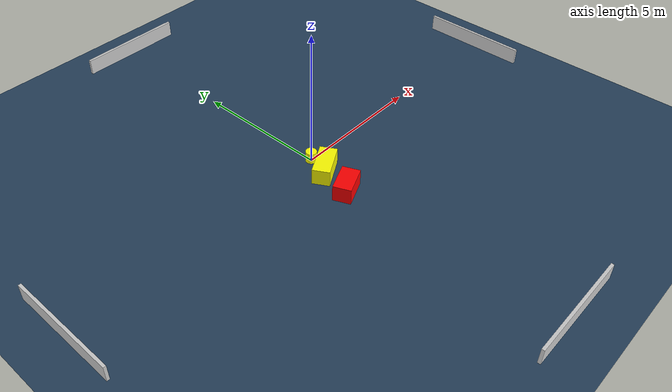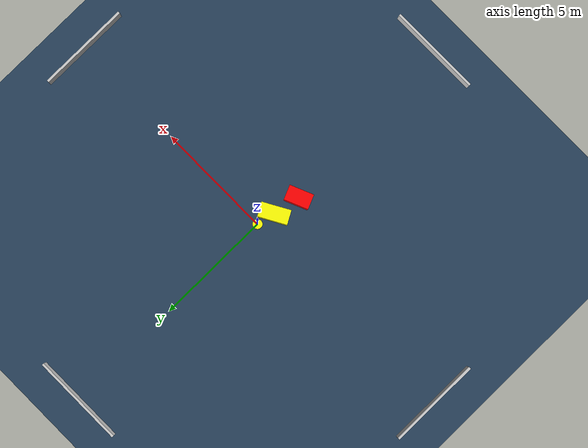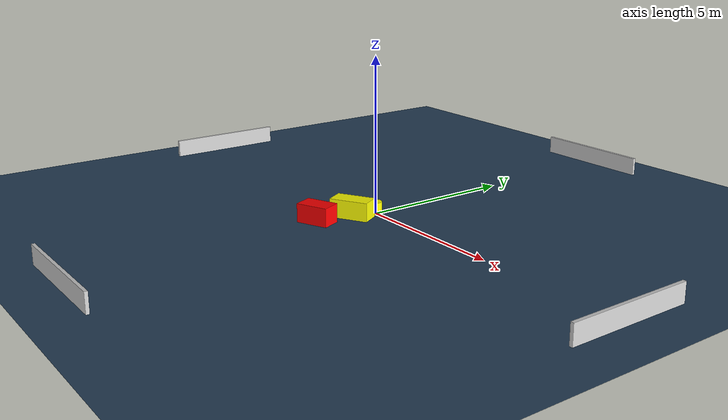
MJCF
<?xml version="1.0" ?>
<mujoco model="generated_environment">
  <option timestep="0.01" integrator="RK4" cone="elliptic"/>
  <default>
    <geom density="1"/>
  </default>
  <asset>
    <texture builtin="gradient" height="3072" name="skybox" rgb1="0.3 0.5 0.7" rgb2="0 0 0" type="skybox" width="512"/>
    <texture builtin="checker" height="300" name="groundplane" rgb1="0.2 0.3 0.4" rgb2="0.1 0.2 0.3" type="2d" width="300"/>
    <material name="groundplane" reflectance="0.2" texrepeat="5 5" texture="groundplane"/>
  </asset>
  <worldbody>
    <light dir="0 0 -1" directional="true" pos="0 0 1.5"/>
    <geom condim="3" friction="0.5 0.005 0.001" material="groundplane" name="floor" pos="0 0 0" size="0 0 0.05" type="plane"/>
    <body name="walls">
      <geom name="wall_1" condim="4" pos="-10.0 0.0 0.3" rgba="0.800000011920929 0.800000011920929 0.800000011920929 1.0" size="0.05 2.0 0.3" type="box"/>
      <geom name="wall_2" condim="4" pos="10.0 0.0 0.3" rgba="0.800000011920929 0.800000011920929 0.800000011920929 1.0" size="0.05 2.0 0.3" type="box"/>
      <geom name="wall_3" condim="4" pos="0.0 -10.0 0.3" rgba="0.800000011920929 0.800000011920929 0.800000011920929 1.0" size="2.0 0.05 0.3" type="box"/>
      <geom name="wall_4" condim="4" pos="0.0 10.0 0.3" rgba="0.800000011920929 0.800000011920929 0.800000011920929 1.0" size="2.0 0.05 0.3" type="box"/>
    </body>
    <body name="robot">
      <joint name="joint_x" type="slide" pos="0 0 0" axis="1 0 0"/>
      <joint name="joint_y" type="slide" pos="0 0 0" axis="0 1 0"/>
      <geom name="robot" type="cylinder" pos="0.0 0.0 0.2" size="0.2 0.2 0.0" mass="5.0" friction="1.0 0.005 0.0001" condim="4" rgba="1.0 1.0 0.0 1.0"/>
    </body>
    <body name="obstacle_1_movable">
      <geom name="obstacle_1_movable" condim="4" pos="-0.16880803994795843 -0.7756745694920093 0.3" euler="0 0 209.39759434028258" friction="0.0 0.005 0.001" rgba="1.0 1.0 0.0 1.0" size="0.6260031377407815 0.30925332635811226 0.3" type="box" mass="0.1"/>
      <joint type="free"/>
    </body>
    <body name="obstacle_2_static">
      <geom name="obstacle_2_static" condim="4" pos="-0.39581164221899323 -1.930023810566103 0.3" euler="0 0 203.0858358232733" friction="0.0 0.005 0.001" rgba="1.0 0.0 0.0 1.0" size="0.5262922198393208 0.319436784099758 0.3" type="box"/>
    </body>
  </worldbody>
  <actuator>
    <motor name="actuator_x" joint="joint_x" gear="1" ctrlrange="-1 1"/>
    <motor name="actuator_y" joint="joint_y" gear="1" ctrlrange="-1 1"/>
  </actuator>
</mujoco>
